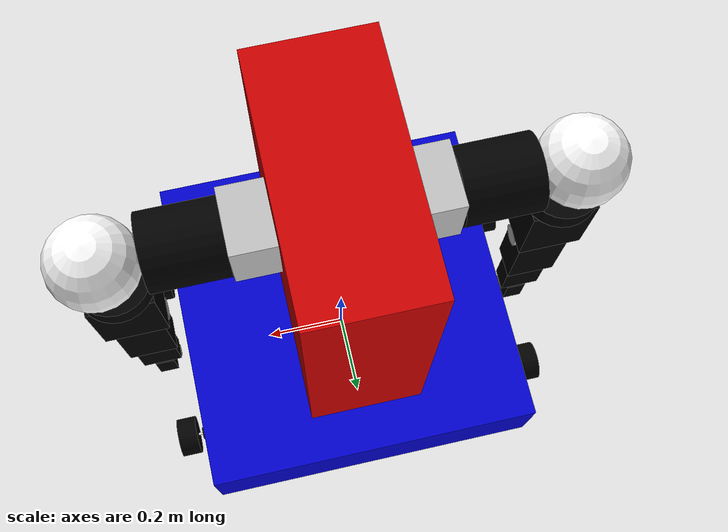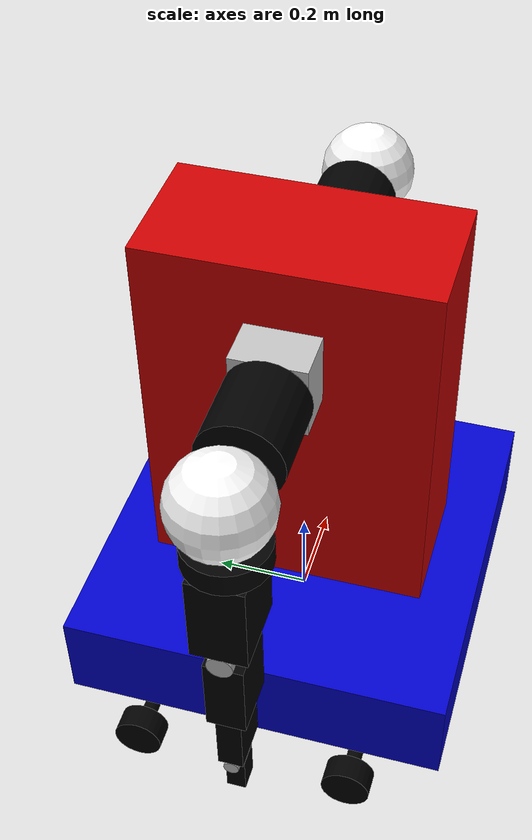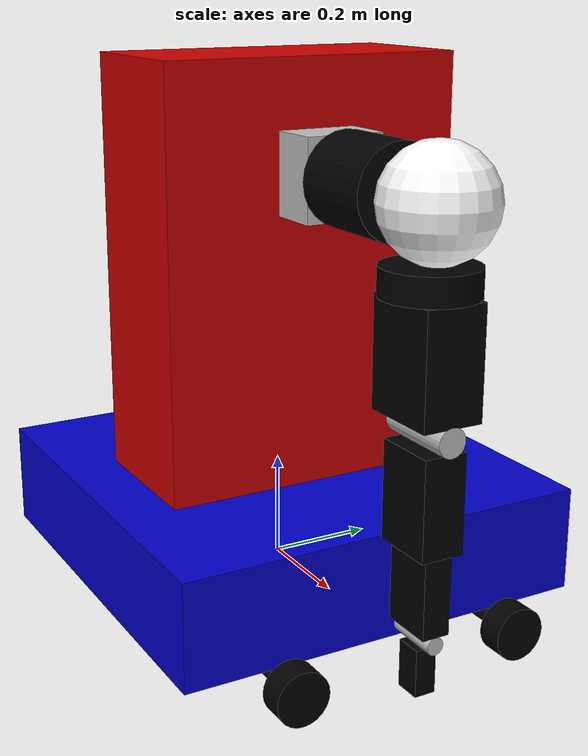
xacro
<?xml version="1.0"?>
<robot xmlns:xacro="http://www.ros.org/wiki/xacro" name="damr">

    <material name="blue">
        <color rgba="0 0 0.8 1"/>
    </material>

    <material name="red">
        <color rgba="0.8 0 0 1"/>
    </material>

    <material name="green">
        <color rgba="0 0.8 0 1"/>
    </material>

    <material name="grey">
        <color rgba="0.75 0.75 0.75 1"/>
    </material>

    <material name="white">
        <color rgba="1.0 1.0 1.0 1"/>
    </material>

    <material name="black">
        <color rgba="0 0 0 1"/>
    </material>

    <material name="yellow">
        <color rgba="1 1 0 1"/>
    </material>

    <xacro:macro name="default_inertial" params="mass">
        <inertial>
            <mass value="${mass}" />
            <inertia ixx="1.0" ixy="0.0" ixz="0.0" iyy="1.0" iyz="0.0" izz="1.0" />
        </inertial>
    </xacro:macro>

    <xacro:macro name="wheel_set" params="num y_reflect x_reflect">
       <link name="motor_${num}">
        <visual>
            <geometry>
                <cylinder radius="0.016" length="0.082"/>
            </geometry>
            <origin xyz="0.0 0.0 -0.016" rpy="0.0 1.5708 0.0"/>
            <material name="black"/>

        </visual>
        <collision>
            <geometry>
                <cylinder radius="0.016" length="0.082"/>
            </geometry>
        <origin xyz="0.0 0.0 -0.016" rpy="0.0 1.5708 0.0"/>
        </collision>
        <xacro:default_inertial mass="0.3"/>

       </link>

       <joint name="base_motor${num}_joint" type="fixed">
            <parent link="base_link"/>
            <child link="motor_${num}"/>
            <origin xyz="${y_reflect*0.392} ${-0.224*x_reflect} 0.0" rpy="0.0 0.0 0.0"/>
       </joint>

       <link name="shaft_${num}">
        <visual>
            <geometry>
                <cylinder radius="0.003" length="0.012"/>
            </geometry>
            <origin xyz="${y_reflect*0.006} 0.0 0.0" rpy="0.0 1.5708 0.0"/>
            <material name="white"/>

        </visual>
        <collision>
            <geometry>
                <cylinder radius="0.003" length="0.012"/>
            </geometry>
            <origin xyz="${y_reflect*0.006} 0.0 0.0" rpy="0.0 1.5708 0.0"/>
        </collision>
       </link>

       <joint name="motor${num}_shaft${num}_joint" type="continuous">
            <parent link="motor_${num}"/>
            <child link="shaft_${num}"/>
            <axis xyz="1 0 0"/>
            <origin xyz="${y_reflect*0.041} 0 -0.016" rpy="0 0 0"/>
       </joint>
       <gazebo reference="shaft_${num}">
        <mu1 value="200.0"/>
        <mu2 value="100.0"/>
        <kp value="10000000.0" />
        <kd value="1.0" />
        <material>Gazebo/Black</material>
       </gazebo>
       <transmission name="shaft_${num}_trans">
        <type>transmission_interface/SimpleTransmission</type>
        <actuator name="shaft_${num}_motor">
            <mechanicalReduction>1</mechanicalReduction>
        </actuator>
        <joint name="motor${num}_shaft${num}_joint">
            <hardwareInterface>VelocityJointInterface</hardwareInterface>
        </joint>
       </transmission>

       <link name="wheel_${num}">
            <visual>
                <geometry>
                    <cylinder radius="0.05" length="0.05"/>
                </geometry>
                <origin xyz="${y_reflect*0.025} 0.0 0.0" rpy="0.0 1.5708 0.0"/>
                <material name="black"/>

            </visual>
            <collision>
                <geometry>
                    <cylinder radius="0.05" length="0.05"/>
                </geometry>
                <origin xyz="${y_reflect*0.025} 0.0 0.0" rpy="0.0 1.5708 0.0"/>
            </collision>
            <xacro:default_inertial mass="0.4"/>
       </link>

       <joint name="shaft${num}_wheel${num}_joint" type="fixed">
            <parent link="shaft_${num}"/>
            <child link="wheel_${num}"/>
            <origin xyz="${y_reflect*0.012} 0.0 0.0" rpy="0.0 0.0 0.0"/>
       </joint>

    </xacro:macro>

    <link name="body_link">
    </link>
    <link name="base_link">
        <visual>
            <geometry>
                <box size="0.82 0.8 0.2"/>
            </geometry>
            <origin xyz="0.0 0.0 0.1" rpy="0.0 0.0 0.0"/>
            <material name="blue"/>
        </visual>
        <collision>
            <geometry>
                <box size="0.82 0.8 0.2"/>
            </geometry>
            <origin xyz="0.0 0.0 0.1" rpy="0.0 0.0 0.0"/>
        </collision>
        <xacro:default_inertial mass="10"/>
    </link>
    <joint name="base_body_joint" type="fixed">
     <parent link="body_link"/>
     <child link="base_link"/>
     <origin xyz="0.0 0.0 0.0" rpy="0.0 0.0 0.0"/>
    </joint>

    <link name="torso">
        <visual>
            <geometry>
                <box size="0.89 0.58 0.28"/>
            </geometry>
            <origin xyz="0 0 0.445" rpy="0.0 1.5708 0.0"/>
            <material name="red"/>
        </visual>
        <collision>
            <geometry>
                <box size="0.89 0.58 0.28"/>
            </geometry>
            <origin xyz="0 0 0.445" rpy="0.0 1.5708 0.0"/>
        </collision>
        <xacro:default_inertial mass="10"/>

    </link>
    <joint name="base_torso" type="fixed">
        <parent link="base_link"/>
        <child link="torso"/>
        <origin xyz="0.0 0.0 0.1" rpy="0.0 0.0 0.0"/>
    </joint>

   <xacro:wheel_set num="1" y_reflect="1" x_reflect="1"/>
   <xacro:wheel_set num="2" y_reflect="-1" x_reflect="1"/>
   <xacro:wheel_set num="3" y_reflect="1" x_reflect="-1"/>
   <xacro:wheel_set num="4" y_reflect="-1" x_reflect="-1"/>

    <link name="right_shoulder_support">
        <visual>
            <geometry>
                <box size="0.1 0.15 0.15"/>
            </geometry>
            <origin xyz="0.05 0.0 0.0" rpy="0.0 0.0 0.0"/>
            <material name="grey"/>
        </visual>
        <collision>
            <geometry>
                <box size="0.1 0.15 0.15"/>
            </geometry>
            <origin xyz="0.05 0.0 0.0" rpy="0.0 0.0 0.0"/>
        </collision>
        <xacro:default_inertial mass="0.5"/>

    </link>

    <joint name="torso_right_support_joint" type="fixed">
        <parent link="torso"/>
        <child link="right_shoulder_support"/>
        <origin xyz="0.14 0.0 0.69" rpy="0.0 0.0 0.0"/>
    </joint>

    <link name="right_hshoulder">
        <visual>
            <geometry>
                <cylinder radius="0.085" length="0.17"/>
            </geometry>
            <origin xyz="0.085 0.0 0.0" rpy="0.0 1.5708 0.0"/>
            <material name="black"/>
        </visual>
        <collision>
            <geometry>
                <cylinder radius="0.085" length="0.17"/>
            </geometry>
            <origin xyz="0.085 0.0 0.0" rpy="0.0 1.5708 0.0"/>
        </collision>
        <xacro:default_inertial mass="4"/>
    </link>

    <joint name="right_support_hshoulder_joint" type="fixed">
        <parent link="right_shoulder_support"/>
        <child link="right_hshoulder"/>
        <origin xyz="0.1 0.0 0.0" rpy="0.0 0.0 0.0"/>
    </joint>

    <link name="right_shoulder_roll">
        <visual>
            <geometry>
                <cylinder radius="0.001" length="0.0005"/>
            </geometry>
            <origin xyz="0.0 0.0 0.0" rpy="0.0 0.0 0.0"/>
            <material name="red"/>
        </visual>
        <xacro:default_inertial mass="0.001"/>
        <collision>
            <geometry>
                <cylinder radius="0.001" length="0.0005"/>
            </geometry>
            <origin xyz="0.0 0.0 0.0" rpy="0.0 0.0 0.0"/>

        </collision>

    </link>

    <joint name="right_shoulder_roll_joint" type="continuous">
        <parent link="right_hshoulder"/>
        <child link="right_shoulder_roll"/>
        <axis xyz="1 0 0"/>
        <origin xyz="0.17 0 0" rpy="0 0 0"/>
    </joint>

    <transmission name="right_shoulder_roll_trans">
        <type>transmission_interface/SimpleTransmission</type>
        <actuator name="$right_shoulder_motor">
            <mechanicalReduction>1</mechanicalReduction>
        </actuator>
        <joint name="right_shoulder_roll_joint">
            <hardwareInterface>hardware_interface/PositionJointInterface</hardwareInterface>
        </joint>
    </transmission>

    <link name="right_shoulder_pitch">
        <visual>
            <geometry>
                <cylinder radius="0.001" length="0.0005"/>
            </geometry>
            <origin xyz="0.0 0.0 0.0" rpy="0.0 1.5708 0.0"/>
            <material name="green"/>

        </visual>
        <collision>
            <geometry>
                <cylinder radius="0.001" length="0.0005"/>
            </geometry>
            <origin xyz="0.0 0.0 0.0" rpy="0.0 1.5708 0.0"/>

        </collision>
        <xacro:default_inertial mass="0.001"/>
    </link>

    <joint name="right_shoulder_pitch_joint" type="revolute">
        <parent link="right_shoulder_roll"/>
        <child link="right_shoulder_pitch"/>
        <axis xyz="0 1 0"/>
        <limit lower="-1.5708" upper="1.5708" velocity="0.1" effort="1000.0"/>
        <origin xyz="0 0 0" rpy="0 0 0"/>
    </joint>

    <link name="right_shoulder_ball">
        <visual>
            <geometry>
                <sphere radius="0.1"/>
            </geometry>
            <origin xyz="0.1 0.0 0.0" rpy="0.0 0.0 0.0"/>
            <material name="white"/>
        </visual>
        <collision>
            <geometry>
                <sphere radius="0.1"/>
            </geometry>
            <origin xyz="0.1 0.0 0.0" rpy="0.0 0.0 0.0"/>
        </collision>
        <xacro:default_inertial mass="4"/>

    </link>

    <joint name="right_ball_joint" type="fixed">
        <parent link="right_shoulder_pitch"/>
        <child link="right_shoulder_ball"/>
        <origin xyz="0.00025 0.0 0.0" rpy="0.0 0.0 0.0"/>
    </joint>

    <link name="right_vshoulder">
        <visual>
            <origin xyz="0.0 0.0 -0.025" rpy="0.0 0.0 0.0"/>
            <geometry>
                <cylinder radius="0.085" length="0.05"/>
            </geometry>
            <material name="black"/>
        </visual>
        <collision>
            <origin xyz="0.0 0.0 -0.025" rpy="0.0 0.0 0.0"/>
            <geometry>
                <cylinder radius="0.085" length="0.05"/>
            </geometry>
        </collision>
        <xacro:default_inertial mass="4"/>
    </link>

    <joint name="right_ball_vshoulder_joint" type="fixed">
        <parent link="right_shoulder_ball"/>
        <child link="right_vshoulder"/>
        <origin xyz="0.085 0.0 -0.1" rpy="0.0 0.0 0.0"/>
    </joint>

    <link name="right_elbow">
        <visual>
            <geometry>
                <box size="0.15 0.112 0.2"/>
            </geometry>
            <origin xyz="0.0 0.0 -0.1" rpy="0.0 0.0 0.0"/>
            <material name="black"/>
        </visual>
        <collision>
            <geometry>
                <box size="0.15 0.112 0.2"/>
            </geometry>
            <origin xyz="0.0 0.0 -0.1" rpy="0.0 0.0 0.0"/>
        </collision>
        <xacro:default_inertial mass="1.1"/>
    </link>

    <joint name="right_vshoulder_elbow_joint" type="fixed">
        <parent link="right_vshoulder"/>
        <child link="right_elbow"/>
        <origin xyz="0.0 0.0 -0.05" rpy="0.0 0.0 0.0"/>

    </joint>

    <link name="right_elbow_joint_shaft">
        <visual>
            <geometry>
                <cylinder radius="0.026" length="0.15"/>
            </geometry>
            <origin xyz="0.0 0.0 -0.013" rpy="0.0 1.5708 0.0"/>
            <material name="grey"/>
        </visual>
    </link>

    <joint name="right_elbow_elbow_shaft_joint" type="revolute">
        <parent link="right_elbow"/>
        <child link="right_elbow_joint_shaft"/>
        <origin xyz="0.0 0.0 -0.21" rpy="0.0 0.0 0.0"/>
        <axis xyz="1.0 0.0 0.0"/>
        <limit lower="-1.5708" upper="1.5708" effort="1000.0" velocity="0.1"/>

    </joint>

    <link name="right_upper_forearm">
        <visual>
            <geometry>
                <box size="0.12 0.08 0.18"/>
            </geometry>
            <origin xyz="0.0 0.0 -0.09" rpy="0.0 0.0 0.0"/>
            <material name="black"/>

        </visual>
        <collision>
            <geometry>
                <box size="0.12 0.08 0.18"/>
            </geometry>
            <origin xyz="0.0 0.0 -0.09" rpy="0.0 0.0 0.0"/>
        </collision>
        <xacro:default_inertial mass="1"/>
    </link>

    <joint name="right_elbow_shaft_uforearm_joint" type="fixed">
        <parent link="right_elbow_joint_shaft"/>
        <child link="right_upper_forearm"/>

        <origin xyz="0 0 -0.040" rpy="0 0 0"/>
    </joint>

    <link name="right_lower_forearm">
        <visual>
            <geometry>
                <box size="0.1 0.052 0.148"/>
            </geometry>
            <origin xyz="0.0 0.0 -0.074" rpy="0.0 0.0 0.0"/>
            <material name="black"/>
        </visual>
        <collision>
            <geometry>
                <box size="0.1 0.052 0.148"/>
            </geometry>
            <origin xyz="0.0 0.0 -0.074" rpy="0.0 0.0 0.0"/>
        </collision>
        <xacro:default_inertial mass="1"/>
    </link>

    <joint name="right_upper_lower_forearm_joint" type="revolute">
        <parent link="right_upper_forearm"/>
        <child link="right_lower_forearm"/>
        <axis xyz="0 0 1"/>
        <limit lower="-1.5708" upper="1.5708" velocity="0.10" effort="1000.0"/>
        <origin xyz="0 0 -0.18" rpy="0 0 0"/>
    </joint>

    <link name="right_forearm_shaft">
        <visual>
            <geometry>
                <cylinder radius="0.016" length="0.1"/>
            </geometry>
            <origin xyz="0.0 0.0 -0.016" rpy="0.0 1.5708 0.0"/>
            <material name="grey"/>
        </visual>

    </link>

    <joint name="right_lforearm_lforearm_shaft_joint" type="revolute">
        <parent link="right_lower_forearm"/>
        <child link="right_forearm_shaft"/>
        <axis xyz="1 0 0"/>
        <limit lower="-1.5708" upper="1.5708" velocity="0.1" effort="1000.0"/>
        <origin xyz="0 0 -0.148" rpy="0 0 0"/>
    </joint>

    <link name="right_endeff">
        <visual>
            <geometry>
                <box size="0.05 0.04 0.088"/>
            </geometry>
            <origin xyz="0.0 0.0 -0.044" rpy="0.0 0.0 0.0"/>
            <material name="black"/>
        </visual>
        <collision>
            <geometry>
                <box size="0.05 0.04 0.088"/>
            </geometry>
            <origin xyz="0.0 0.0 -0.044" rpy="0.0 0.0 0.0"/>
        </collision>
        <xacro:default_inertial mass="0.5"/>

    </link>

    <joint name="right_endeff_joint" type="fixed">
        <parent link="right_forearm_shaft"/>
        <child link="right_endeff"/>
        <origin xyz="0.0 0.0 -0.032" rpy="0.0 0.0 0.0"/>
    </joint>

    <link name="left_shoulder_support">
        <visual>
            <geometry>
                <box size="0.1 0.15 0.15"/>
            </geometry>
            <origin xyz="-0.05 0.0 0.0" rpy="0.0 0.0 0.0"/>
            <material name="grey"/>
        </visual>
        <collision>
            <geometry>
                <box size="0.1 0.15 0.15"/>
            </geometry>
            <origin xyz="-0.05 0.0 0.0" rpy="0.0 0.0 0.0"/>
        </collision>
        <xacro:default_inertial mass="0.5"/>

    </link>

    <joint name="torso_left_support_joint" type="fixed">
        <parent link="torso"/>
        <child link="left_shoulder_support"/>
        <origin xyz="-0.14 0.0 0.69" rpy="0.0 0.0 0.0"/>
    </joint>

    <link name="left_hshoulder">
        <visual>
            <geometry>
                <cylinder radius="0.085" length="0.17"/>
            </geometry>
            <origin xyz="-0.085 0.0 0.0" rpy="0.0 1.5708 0.0"/>
            <material name="black"/>
        </visual>
        <collision>
            <geometry>
                <cylinder radius="0.085" length="0.17"/>
            </geometry>
            <origin xyz="-0.085 0.0 0.0" rpy="0.0 1.5708 0.0"/>
        </collision>
        <xacro:default_inertial mass="4"/>
    </link>

    <joint name="left_support_hshoulder_joint" type="fixed">
        <parent link="left_shoulder_support"/>
        <child link="left_hshoulder"/>
        <origin xyz="-0.1 0.0 0.0" rpy="0.0 0.0 0.0"/>
    </joint>

    <link name="left_shoulder_roll">
        <visual>
            <geometry>
                <cylinder radius="0.001" length="0.0005"/>
            </geometry>
            <origin xyz="0.0 0.0 0.0" rpy="0.0 0.0 0.0"/>
            <material name="red"/>
        </visual>
        <xacro:default_inertial mass="0.001"/>
        <collision>
            <geometry>
                <cylinder radius="0.001" length="0.0005"/>
            </geometry>
            <origin xyz="0.0 0.0 0.0" rpy="0.0 0.0 0.0"/>

        </collision>

    </link>

    <joint name="left_shoulder_roll joint" type="revolute">
        <parent link="left_hshoulder"/>
        <child link="left_shoulder_roll"/>
        <axis xyz="1 0 0"/>
        <limit lower="-1.5708" upper="1.5708" velocity="0.1" effort="1000.0"/>
        <origin xyz="-0.17 0 0" rpy="0 0 0"/>
    </joint>

    <link name="left_shoulder_pitch">
        <visual>
            <geometry>
                <cylinder radius="0.001" length="0.0005"/>
            </geometry>
            <origin xyz="0.0 0.0 0.0" rpy="0.0 1.5708 0.0"/>
            <material name="green"/>

        </visual>
        <xacro:default_inertial mass="0.001"/>
        <collision>
        <geometry>
                <cylinder radius="0.001" length="0.0005"/>
            </geometry>
            <origin xyz="0.0 0.0 0.0" rpy="0.0 1.5708 0.0"/>

        </collision>
    </link>

    <joint name="left_shoulder_pitch_joint" type="revolute">
        <parent link="left_shoulder_roll"/>
        <child link="left_shoulder_pitch"/>
        <axis xyz="0 1 0"/>
        <limit lower="-1.5708" upper="1.5708" velocity="0.1" effort="1000.0"/>
        <origin xyz="0 0 0" rpy="0 0 0"/>
    </joint>

    <link name="left_shoulder_ball">
        <visual>
            <geometry>
                <sphere radius="0.1"/>
            </geometry>
            <origin xyz="-0.1 0.0 0.0" rpy="0.0 0.0 0.0"/>
            <material name="white"/>
        </visual>
        <collision>
            <geometry>
                <sphere radius="0.1"/>
            </geometry>
            <origin xyz="-0.1 0.0 0.0" rpy="0.0 0.0 0.0"/>
        </collision>
        <xacro:default_inertial mass="4"/>

    </link>

    <joint name="left_ball_joint" type="fixed">
        <parent link="left_shoulder_pitch"/>
        <child link="left_shoulder_ball"/>
        <origin xyz="-0.00025 0.0 0.0" rpy="0.0 0.0 0.0"/>
    </joint>

    <link name="left_vshoulder">
        <visual>
            <origin xyz="0.0 0.0 -0.025" rpy="0.0 0.0 0.0"/>
            <geometry>
                <cylinder radius="0.085" length="0.05"/>
            </geometry>
            <material name="black"/>
        </visual>
        <collision>
            <origin xyz="0.0 0.0 -0.025" rpy="0.0 0.0 0.0"/>
            <geometry>
                <cylinder radius="0.085" length="0.05"/>
            </geometry>
        </collision>
        <xacro:default_inertial mass="4"/>
    </link>

    <joint name="left_ball_vshoulder_joint" type="fixed">
        <parent link="left_shoulder_ball"/>
        <child link="left_vshoulder"/>
        <origin xyz="-0.085 0.0 -0.1" rpy="0.0 0.0 0.0"/>
    </joint>

    <link name="left_elbow">
        <visual>
            <geometry>
                <box size="0.15 0.112 0.2"/>
            </geometry>
            <origin xyz="0.0 0.0 -0.1" rpy="0.0 0.0 0.0"/>
            <material name="black"/>
        </visual>
        <collision>
            <geometry>
                <box size="0.15 0.112 0.2"/>
            </geometry>
            <origin xyz="0.0 0.0 -0.1" rpy="0.0 0.0 0.0"/>
        </collision>
        <xacro:default_inertial mass="1.1"/>
    </link>

    <joint name="left_vshoulder_elbow_joint" type="fixed">
        <parent link="left_vshoulder"/>
        <child link="left_elbow"/>
        <origin xyz="0.0 0.0 -0.05" rpy="0.0 0.0 0.0"/>

    </joint>

    <link name="left_elbow_joint_shaft">
        <visual>
            <geometry>
                <cylinder radius="0.026" length="0.15"/>
            </geometry>
            <origin xyz="0.0 0.0 -0.013" rpy="0.0 1.5708 0.0"/>
            <material name="grey"/>
        </visual>
    </link>

    <joint name="left_elbow_elbow_shaft_joint" type="revolute">
        <parent link="left_elbow"/>
        <child link="left_elbow_joint_shaft"/>
        <origin xyz="0.0 0.0 -0.21" rpy="0.0 0.0 0.0"/>
        <axis xyz="1.0 0.0 0.0"/>
        <limit lower="-1.5708" upper="1.5708" effort="1000.0" velocity="0.1"/>

    </joint>

    <link name="left_upper_forearm">
        <visual>
            <geometry>
                <box size="0.12 0.08 0.18"/>
            </geometry>
            <origin xyz="0.0 0.0 -0.09" rpy="0.0 0.0 0.0"/>
            <material name="black"/>

        </visual>
        <collision>
            <geometry>
                <box size="0.12 0.08 0.18"/>
            </geometry>
            <origin xyz="0.0 0.0 -0.09" rpy="0.0 0.0 0.0"/>
        </collision>
        <xacro:default_inertial mass="1"/>
    </link>

    <joint name="left_elbow_shaft_uforearm_joint" type="fixed">
        <parent link="left_elbow_joint_shaft"/>
        <child link="left_upper_forearm"/>

        <origin xyz="0 0 -0.040" rpy="0 0 0"/>
    </joint>

    <link name="left_lower_forearm">
        <visual>
            <geometry>
                <box size="0.1 0.052 0.148"/>
            </geometry>
            <origin xyz="0.0 0.0 -0.074" rpy="0.0 0.0 0.0"/>
            <material name="black"/>
        </visual>
        <collision>
            <geometry>
                <box size="0.1 0.052 0.148"/>
            </geometry>
            <origin xyz="0.0 0.0 -0.074" rpy="0.0 0.0 0.0"/>
        </collision>
        <xacro:default_inertial mass="1"/>
    </link>

    <joint name="left_upper_lower_forearm_joint" type="revolute">
        <parent link="left_upper_forearm"/>
        <child link="left_lower_forearm"/>
        <axis xyz="0 0 1"/>
        <limit lower="-1.5708" upper="1.5708" velocity="0.10" effort="1000.0"/>
        <origin xyz="0 0 -0.18" rpy="0 0 0"/>
    </joint>

    <link name="left_forearm_shaft">
        <visual>
            <geometry>
                <cylinder radius="0.016" length="0.1"/>
            </geometry>
            <origin xyz="0.0 0.0 -0.016" rpy="0.0 1.5708 0.0"/>
            <material name="grey"/>
        </visual>

    </link>

    <joint name="left_lforearm_lforearm_shaft_joint" type="revolute">
        <parent link="left_lower_forearm"/>
        <child link="left_forearm_shaft"/>
        <axis xyz="1 0 0"/>
        <limit lower="-1.5708" upper="1.5708" velocity="0.1" effort="1000.0"/>
        <origin xyz="0 0 -0.148" rpy="0 0 0"/>
    </joint>

    <link name="left_endeff">
        <visual>
            <geometry>
                <box size="0.05 0.04 0.088"/>
            </geometry>
            <origin xyz="0.0 0.0 -0.044" rpy="0.0 0.0 0.0"/>
            <material name="black"/>
        </visual>
        <collision>
            <geometry>
                <box size="0.05 0.04 0.088"/>
            </geometry>
            <origin xyz="0.0 0.0 -0.044" rpy="0.0 0.0 0.0"/>
        </collision>
        <xacro:default_inertial mass="0.5"/>

    </link>

    <joint name="left_endeff_joint" type="fixed">
        <parent link="left_forearm_shaft"/>
        <child link="left_endeff"/>
        <origin xyz="0.0 0.0 -0.032" rpy="0.0 0.0 0.0"/>
    </joint>

    <gazebo>
        <plugin name="gazebo_ros_control" filename="libgazebo_ros_control.so">
            <robotNamespace>/damr</robotNamespace>
        </plugin>
    </gazebo>

</robot>
